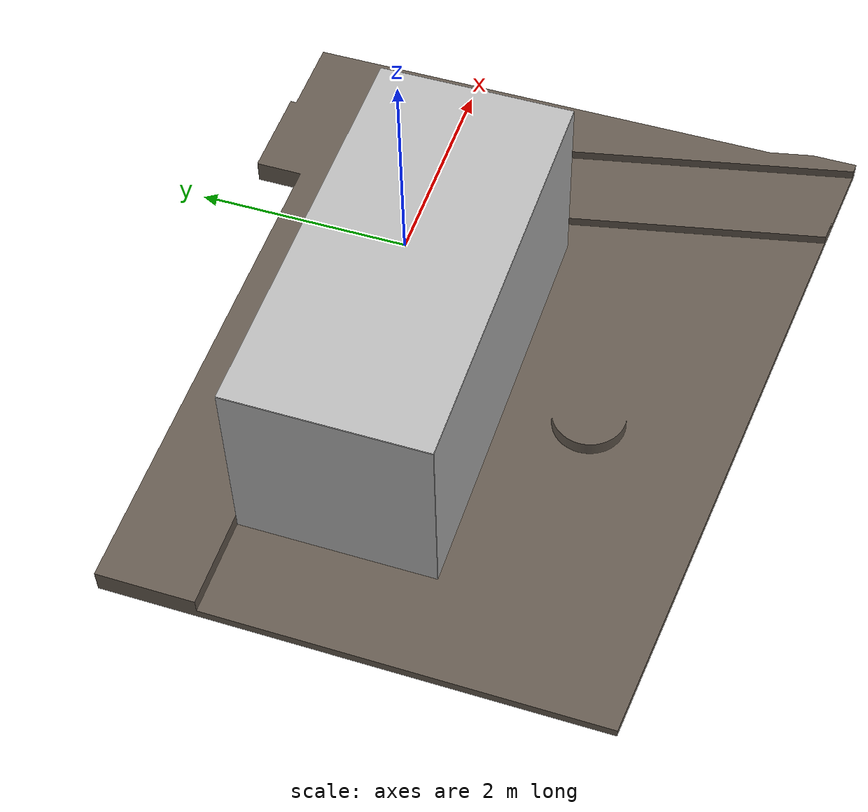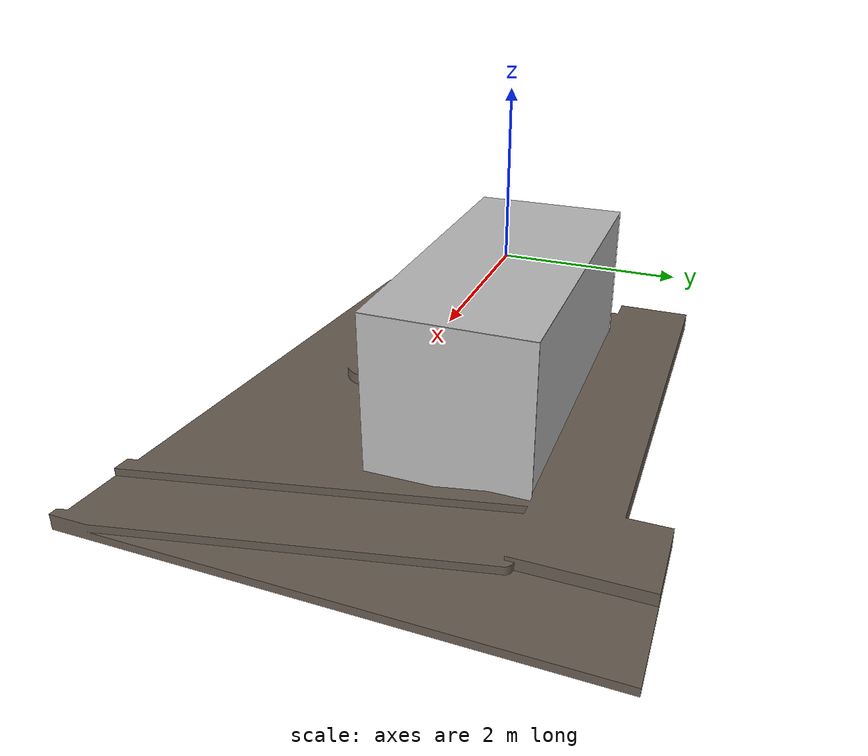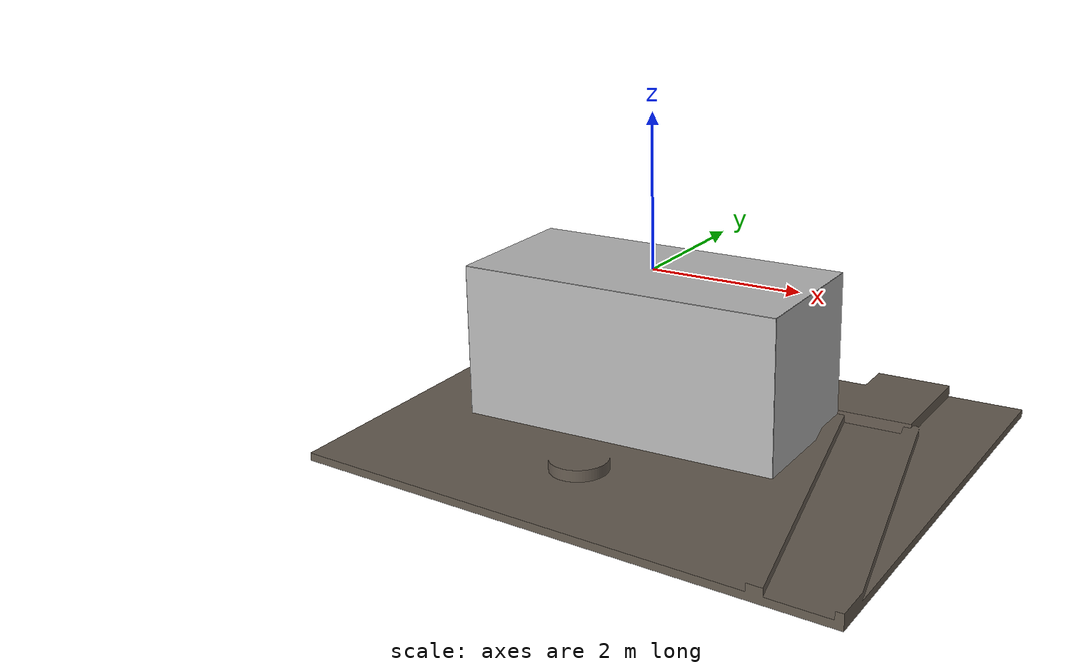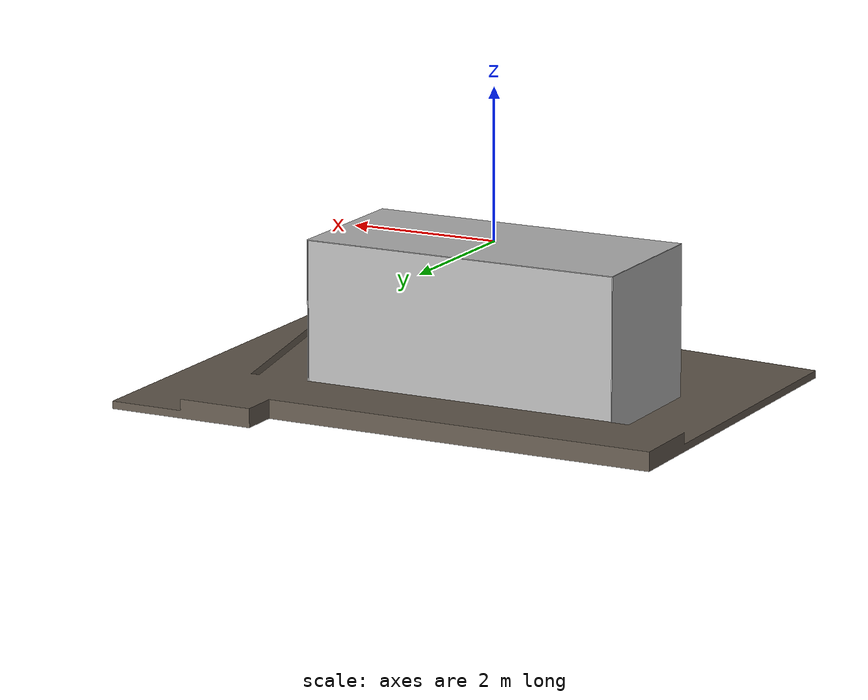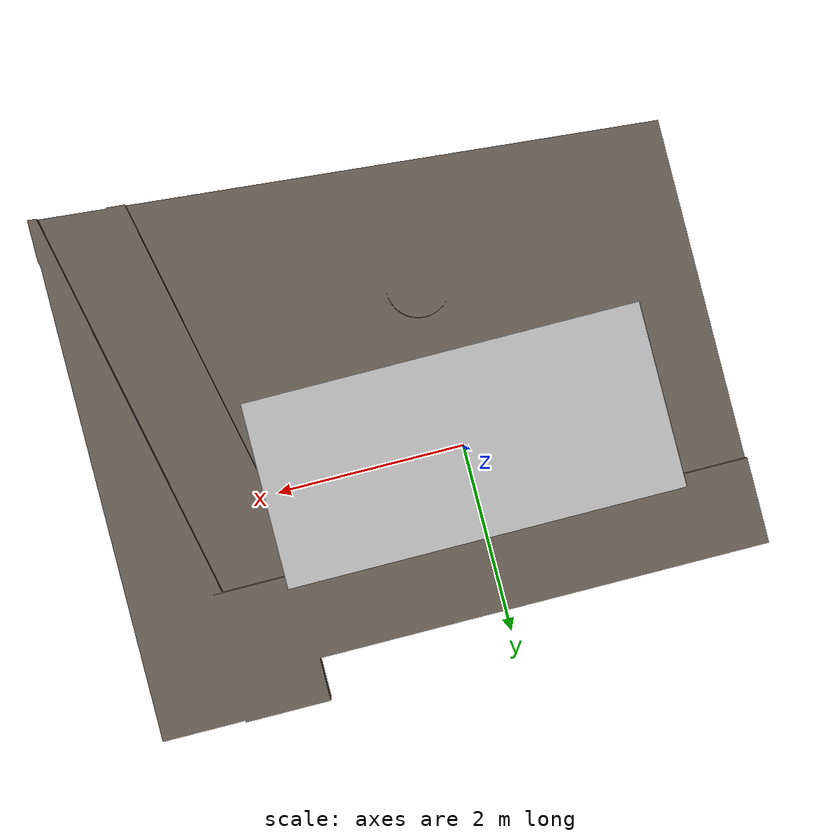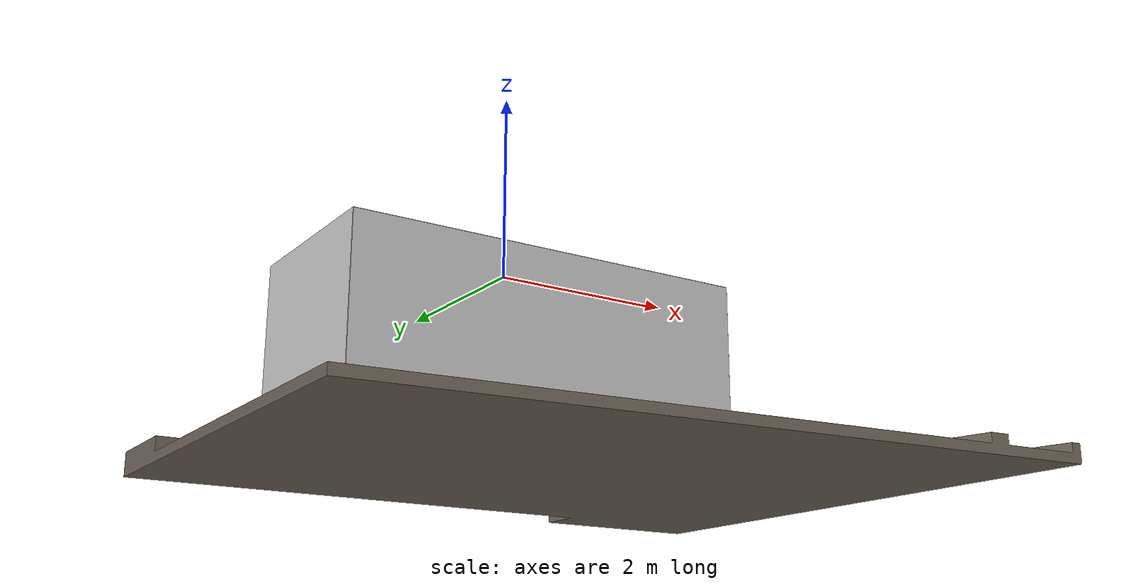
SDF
<?xml version="1.0" ?>
<sdf version="1.5">
  <model name="GRMI_pool_seabed">
    <static>true</static>
    <link name="seabed">
      <collision name="seabed">
        <pose>0 0 -2.10 0 0 0</pose>
        <geometry>
          <mesh>
            <uri>model://GRMI_pool_seabed/meshes/suelo.dae</uri>
            <scale>1.0 1.0 1.0</scale>
          </mesh>
        </geometry>
      </collision>

      <visual name="seabed">
        <cast_shadows>true</cast_shadows>
        <pose>0 0 -2.10 0 0 0</pose>
        <geometry>
          <mesh>
            <uri>model://GRMI_pool_seabed/meshes/suelo.dae</uri>
            <scale>1.0 1.0 1.0</scale>
          </mesh>
        </geometry>
      </visual>
    </link>

    <link name="water_link">
      <visual name="surface">
        <pose>0 0 0 0 0 0</pose>
        <cast_shadows>false</cast_shadows>
        <geometry>
          <box>
            <size>4.3 2 0.01</size>
          </box>
        </geometry>
        <material>
          <script>
            <uri>file://Media/materials/scripts/water.material</uri>
            <name>UUVSimulator/StaticWater</name>
          </script>
        </material>
      </visual>

      <visual name="bottom">
        <pose>0 0 -2.0 0 0 0</pose>
        <cast_shadows>false</cast_shadows>
        <geometry>
          <box>
            <size>4.3 2 0.01</size>
          </box>
        </geometry>
        <material>
          <script>
            <uri>file://Media/materials/scripts/water.material</uri>
            <name>UUVSimulator/StaticWater</name>
          </script>
        </material>
      </visual>

      <visual name="north_wall">
        <pose>0 0.98 -1.0 0 0 0</pose>
        <cast_shadows>false</cast_shadows>
        <geometry>
          <box>
            <size>4.3 0.01 2.0</size>
          </box>
        </geometry>
        <material>
          <script>
            <uri>file://Media/materials/scripts/water.material</uri>
            <name>UUVSimulator/StaticWater</name>
          </script>
        </material>
      </visual>

      <visual name="south_wall">
        <pose>0 -1 -1 0 0 0</pose>
        <cast_shadows>false</cast_shadows>
        <geometry>
          <box>
            <size>4.3 0.01 2.0</size>
          </box>
        </geometry>
        <material>
          <script>
            <uri>file://Media/materials/scripts/water.material</uri>
            <name>UUVSimulator/StaticWater</name>
          </script>
        </material>
      </visual>

      <visual name="east_wall">
        <pose>2.15 0 -1.0 0 0 0</pose>
        <cast_shadows>false</cast_shadows>
        <geometry>
          <box>
            <size>0.01 2 2</size>
          </box>
        </geometry>
        <material>
          <script>
            <uri>file://Media/materials/scripts/water.material</uri>
            <name>UUVSimulator/StaticWater</name>
          </script>
        </material>
      </visual>

      <visual name="west_wall">
        <pose>-2.15 0 -1.0 0 0 0</pose>
        <cast_shadows>false</cast_shadows>
        <geometry>
          <box>
            <size>0.01 2 2</size>
          </box>
        </geometry>
        <material>
          <script>
            <uri>file://Media/materials/scripts/water.material</uri>
            <name>UUVSimulator/StaticWater</name>
          </script>
        </material>
      </visual>
    </link>
  </model>
</sdf>
